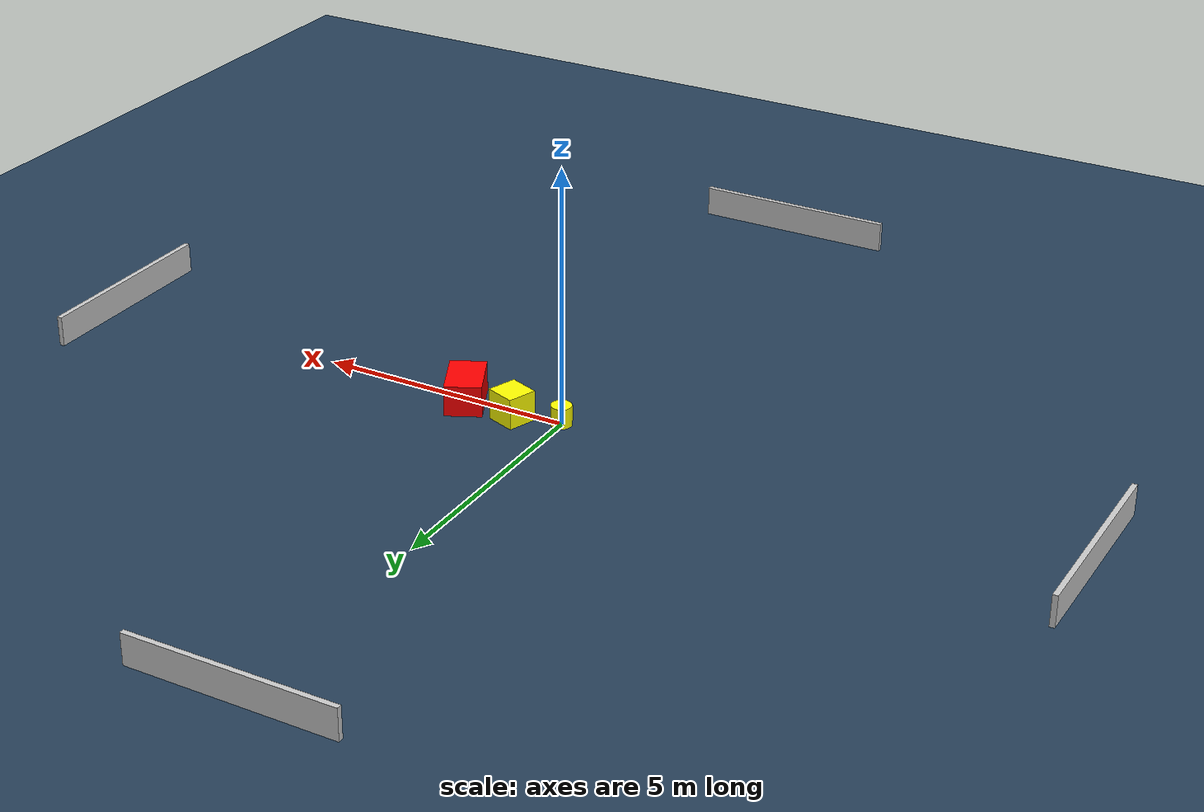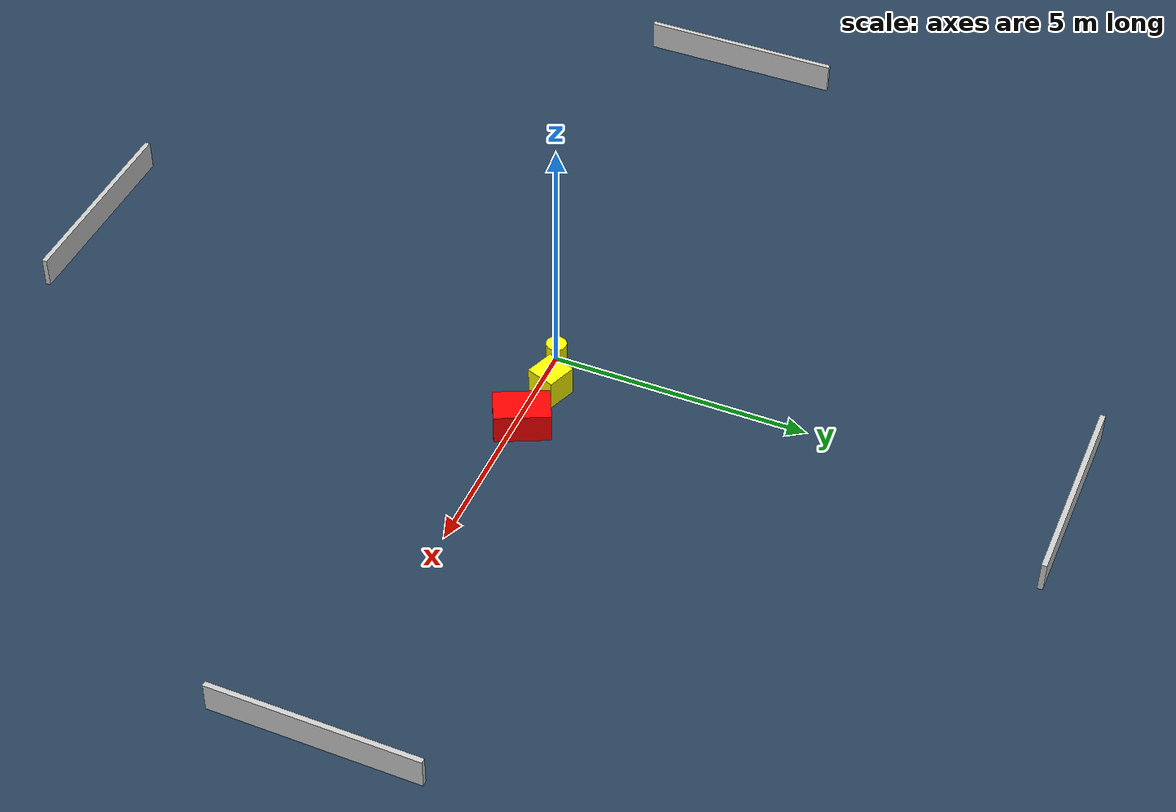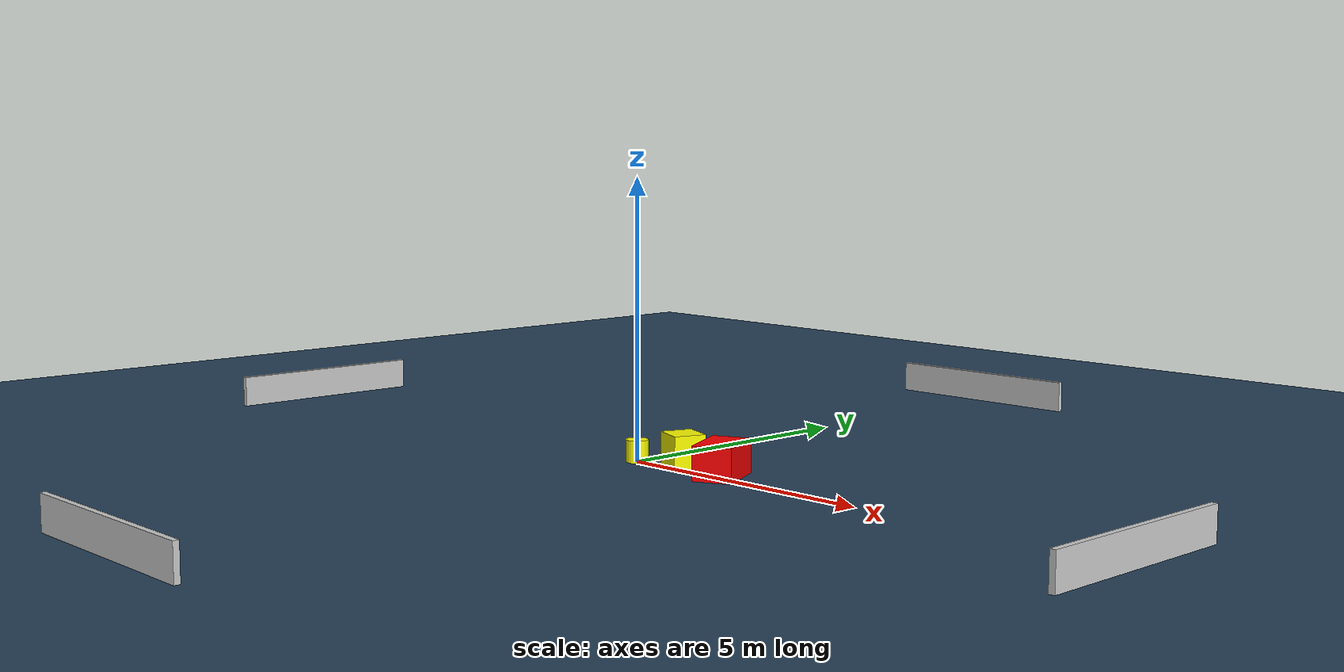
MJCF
<?xml version="1.0" ?>
<mujoco model="generated_environment">
  <option timestep="0.01" integrator="RK4" cone="elliptic"/>
  <default>
    <geom density="1"/>
  </default>
  <asset>
    <texture builtin="gradient" height="3072" name="skybox" rgb1="0.3 0.5 0.7" rgb2="0 0 0" type="skybox" width="512"/>
    <texture builtin="checker" height="300" name="groundplane" rgb1="0.2 0.3 0.4" rgb2="0.1 0.2 0.3" type="2d" width="300"/>
    <material name="groundplane" reflectance="0.2" texrepeat="5 5" texture="groundplane"/>
  </asset>
  <worldbody>
    <light dir="0 0 -1" directional="true" pos="0 0 1.5"/>
    <geom condim="3" friction="0.5 0.005 0.001" material="groundplane" name="floor" pos="0 0 0" size="0 0 0.05" type="plane"/>
    <body name="walls">
      <geom name="wall_1" condim="4" pos="-10.0 0.0 0.3" rgba="0.800000011920929 0.800000011920929 0.800000011920929 1.0" size="0.05 2.0 0.3" type="box"/>
      <geom name="wall_2" condim="4" pos="10.0 0.0 0.3" rgba="0.800000011920929 0.800000011920929 0.800000011920929 1.0" size="0.05 2.0 0.3" type="box"/>
      <geom name="wall_3" condim="4" pos="0.0 -10.0 0.3" rgba="0.800000011920929 0.800000011920929 0.800000011920929 1.0" size="2.0 0.05 0.3" type="box"/>
      <geom name="wall_4" condim="4" pos="0.0 10.0 0.3" rgba="0.800000011920929 0.800000011920929 0.800000011920929 1.0" size="2.0 0.05 0.3" type="box"/>
    </body>
    <body name="robot">
      <joint name="joint_x" type="slide" pos="0 0 0" axis="1 0 0"/>
      <joint name="joint_y" type="slide" pos="0 0 0" axis="0 1 0"/>
      <geom name="robot" type="cylinder" pos="0.0 0.0 0.2" size="0.2 0.2 0.0" mass="5.0" friction="1.0 0.005 0.0001" condim="4" rgba="1.0 1.0 0.0 1.0"/>
    </body>
    <body name="obstacle_1_movable">
      <geom name="obstacle_1_movable" condim="4" pos="0.884277286701804 0.26631707619009864 0.3" euler="0 0 160.0492195822593" friction="0.0 0.005 0.001" rgba="1.0 1.0 0.0 1.0" size="0.2979027318923055 0.2917911747453692 0.3" type="box" mass="0.1"/>
      <joint type="free"/>
    </body>
    <body name="obstacle_2_static">
      <geom name="obstacle_2_static" condim="4" pos="1.9479382170080655 0.1472978293773256 0.3" euler="0 0 295.7598280249892" friction="0.0 0.005 0.001" rgba="1.0 0.0 0.0 1.0" size="0.5351696327144706 0.3511237997978869 0.3" type="box"/>
    </body>
  </worldbody>
  <actuator>
    <motor name="actuator_x" joint="joint_x" gear="1" ctrlrange="-1 1"/>
    <motor name="actuator_y" joint="joint_y" gear="1" ctrlrange="-1 1"/>
  </actuator>
</mujoco>
